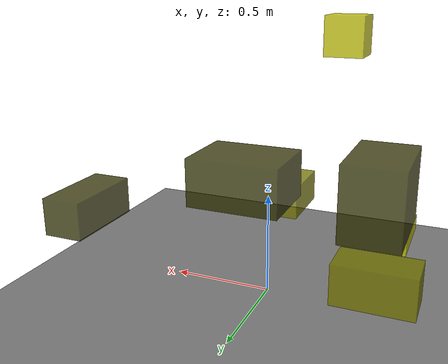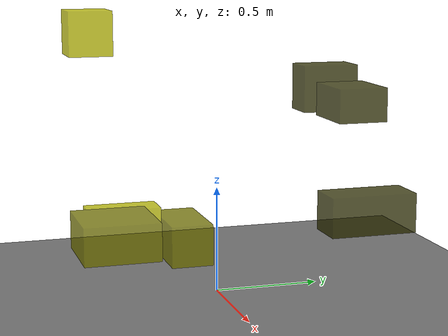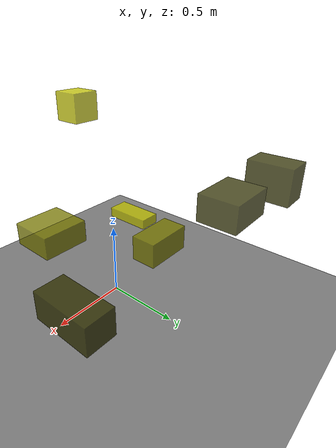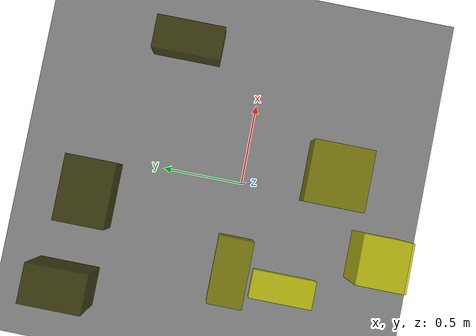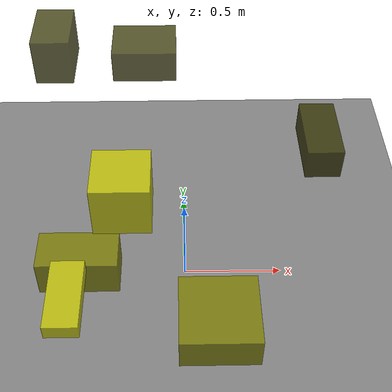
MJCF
<?xml version="1.0"?>
<mujoco model="obstacle_scene">
  <compiler angle="radian" coordinate="local"/>
  <option timestep="0.001" gravity="0 0 -9.81"/>

  <asset>
    <material name="obstacle_mat" rgba="0.8 0.8 0.0 0.8"/>
    <material name="ground_mat" rgba="0.5 0.5 0.5 1"/>
  </asset>

  <worldbody>
    <!-- Ground plane -->
    <geom name="ground" type="plane" size="3 3 0.1" material="ground_mat"/>

    <!-- Obstacles -->
    <body name="obstacle_0" pos="0.704601 0.453659 0.514331">
      <geom name="obs_0" type="box" size="0.090192 0.187342 0.084357" rgba="0.2 0.2 0.0 0.8"/>
    </body>
    <body name="obstacle_1" pos="-0.534260 -0.028758 0.132782">
      <geom name="obs_1" type="box" size="0.202769 0.106519 0.105467" rgba="0.5 0.5 0.0 0.8"/>
    </body>
    <body name="obstacle_2" pos="-0.221996 -0.560025 1.223121">
      <geom name="obs_2" type="box" size="0.102280 0.101113 0.103577" rgba="0.8 0.8 0.0 0.8"/>
    </body>
    <body name="obstacle_3" pos="-0.192603 0.754174 0.852985">
      <geom name="obs_3" type="box" size="0.159901 0.123390 0.083869" rgba="0.2 0.2 0.0 0.8"/>
    </body>
    <body name="obstacle_4" pos="0.145587 -0.515953 0.342723">
      <geom name="obs_4" type="box" size="0.178587 0.172688 0.086403" rgba="0.5 0.5 0.0 0.8"/>
    </body>
    <body name="obstacle_5" pos="-0.561526 -0.340026 0.269467">
      <geom name="obs_5" type="box" size="0.081742 0.185116 0.039730" rgba="0.8 0.8 0.0 0.8"/>
    </body>
    <body name="obstacle_6" pos="-0.652262 0.793174 0.873295">
      <geom name="obs_6" type="box" size="0.094822 0.148645 0.122271" rgba="0.2 0.2 0.0 0.8"/>
    </body>
  </worldbody>
</mujoco>
